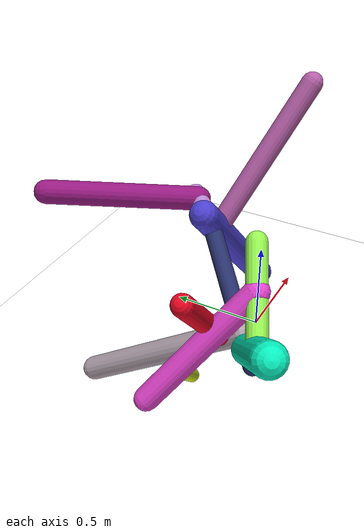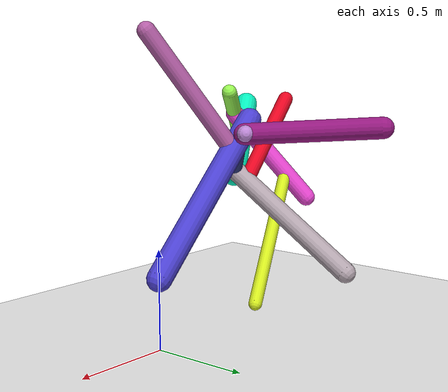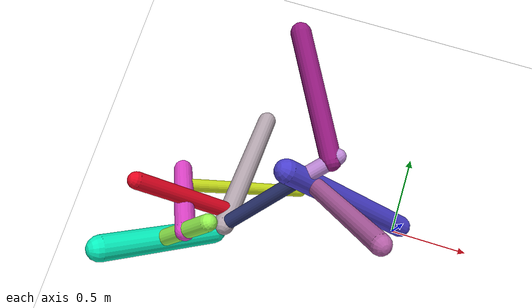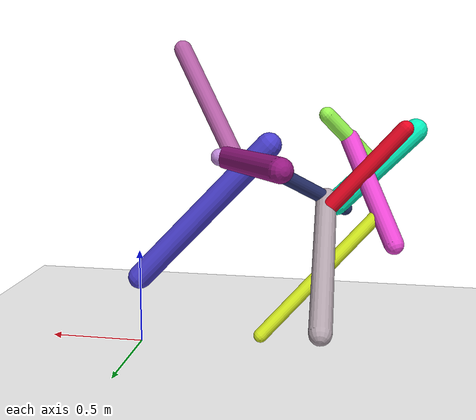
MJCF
<mujoco model="morphology">
  <option timestep="0.01"/>
  <default>
    <default class="/"/>
    <default class="0/"/>
    <default class="0/1/"/>
    <default class="0/2/"/>
    <default class="0/2/3/"/>
    <default class="0/2/4/"/>
    <default class="0/2/4/5/"/>
    <default class="0/2/4/5/6/"/>
    <default class="0/2/4/7/"/>
    <default class="0/2/4/7/8/"/>
    <default class="0/2/4/7/8/9/"/>
    <default class="0/2/4/7/8/9/10/"/>
  </default>
  <asset>
    <texture name="texplane" type="2d" builtin="checker" rgb1="0.10000000000000001 0.20000000000000001 0.29999999999999999" rgb2="0.20000000000000001 0.29999999999999999 0.40000000000000002" width="300" height="300"/>
    <material name="MatPlane" class="/" texture="texplane" texrepeat="20 20" specular="1" shininess="1" reflectance="0.5"/>
  </asset>
  <worldbody>
    <light name="//unnamed_light_0" class="/" directional="true" pos="0 0 1.5" dir="0 0 -1.3" cutoff="100" exponent="1" diffuse="1 1 1" specular="0.10000000000000001 0.10000000000000001 0.10000000000000001"/>
    <geom name="ground" class="/" type="plane" size="15 15 0.5" material="MatPlane" rgba="1 1 1 1"/>
    <site name="body" class="/" size="9.9999999999999995e-07 9.9999999999999995e-07 9.9999999999999995e-07" pos="0 0 0.35855630636215208"/>
    <body pos="0 0 0.35855630636215208" name="0/">
      <freejoint name="0/"/>
      <geom name="0/geom" class="0/" type="capsule" contype="1" conaffinity="1" condim="3" size="0.063913244076612544" rgba="0.29522324029416858 0.25253343686915308 0.81663641948577281 1" friction="0.59999999999999998 0.10000000000000001 0.10000000000000001" fromto="0 0 0 -0.68568822054384548 0.0052271438139737114 0.72065459426873146"/>
      <site name="0/end0" class="0/" size="0.0050000000000000001" pos="-0.68568822054384548 0.0052271438139737114 0.72065459426873146"/>
      <site name="0/attach1" class="0/" size="9.9999999999999995e-07 9.9999999999999995e-07 9.9999999999999995e-07" pos="-0.5482670678012922 0.0041795538059411297 0.57622570938125428"/>
      <body pos="-0.5482670678012922 0.0041795538059411297 0.57622570938125428" name="0/1/">
        <joint name="0/1/joint/" class="0/" type="hinge" axis="0 1 0" limited="true" range="-47.180403420806471 47.180403420806471"/>
        <geom name="0/1/geom" class="0/1/" type="capsule" contype="1" conaffinity="1" condim="3" size="0.047665083366649486" rgba="0.7087398714882458 0.37156393171008684 0.65318897889760019 1" friction="0.59999999999999998 0.10000000000000001 0.10000000000000001" fromto="0 0 0 0.35957418143043784 -0.25416200307180364 0.6072690812421726"/>
        <site name="0/1/end1" class="0/1/" size="0.0050000000000000001" pos="0.35957418143043784 -0.25416200307180364 0.6072690812421726"/>
      </body>
      <site name="0/attach2" class="0/" size="9.9999999999999995e-07 9.9999999999999995e-07 9.9999999999999995e-07" pos="-0.61336261625633048 0.0046757907008291638 0.64464077712641543"/>
      <body pos="-0.61336261625633048 0.0046757907008291638 0.64464077712641543" name="0/2/">
        <joint name="0/2/joint/" class="0/" type="hinge" axis="0 1 0" limited="true" range="-43.240876911010474 43.240876911010474"/>
        <geom name="0/2/geom" class="0/2/" type="capsule" contype="1" conaffinity="1" condim="3" size="0.042886863466865398" rgba="0.74485887967345321 0.53424150253429947 0.84371448818875361 1" friction="0.59999999999999998 0.10000000000000001 0.10000000000000001" fromto="0 0 0 0.14958994947991022 0.15363110740086583 0.031891064180459838"/>
        <site name="0/2/end2" class="0/2/" size="0.0050000000000000001" pos="0.14958994947991022 0.15363110740086583 0.031891064180459838"/>
        <site name="0/2/attach3" class="0/2/" size="9.9999999999999995e-07 9.9999999999999995e-07 9.9999999999999995e-07" pos="0.12158940903106476 0.12487413507795862 0.025921632172184329"/>
        <body pos="0.12158940903106476 0.12487413507795862 0.025921632172184329" name="0/2/3/">
          <joint name="0/2/3/joint/" class="0/2/" type="hinge" axis="-0.72377968556232142 0.67562813990392112 0.14024829174458725" limited="true" range="-57.818888590002345 57.818888590002345"/>
          <geom name="0/2/3/geom" class="0/2/3/" type="capsule" contype="1" conaffinity="1" condim="3" size="0.055258563396274378" rgba="0.58762935077986567 0.09898563392802695 0.50457657587870697 1" friction="0.59999999999999998 0.10000000000000001 0.10000000000000001" fromto="0 0 0 -0.33954697307954729 0.59918221683554607 0.042476914979752145"/>
          <site name="0/2/3/end3" class="0/2/3/" size="0.0050000000000000001" pos="-0.33954697307954729 0.59918221683554607 0.042476914979752145"/>
        </body>
        <site name="0/2/attach4" class="0/2/" size="9.9999999999999995e-07 9.9999999999999995e-07 9.9999999999999995e-07" pos="0.010082725445275921 0.010355109291514666 0.0021495350817832422"/>
        <body pos="0.010082725445275921 0.010355109291514666 0.0021495350817832422" name="0/2/4/">
          <joint name="0/2/4/joint/" class="0/2/" type="hinge" axis="0 -0.20324922268693202 0.97912703643457732" limited="true" range="-32.738676721934795 32.738676721934795"/>
          <geom name="0/2/4/geom" class="0/2/4/" type="capsule" contype="1" conaffinity="1" condim="3" size="0.039393216605224796" rgba="0.15645944703118819 0.19047642009823884 0.42371627965362746 1" friction="0.59999999999999998 0.10000000000000001 0.10000000000000001" fromto="0 0 0 -0.44937564242690131 -0.42324315442650745 -0.31907446610929219"/>
          <site name="0/2/4/end4" class="0/2/4/" size="0.0050000000000000001" pos="-0.44937564242690131 -0.42324315442650745 -0.31907446610929219"/>
          <site name="0/2/4/attach5" class="0/2/4/" size="9.9999999999999995e-07 9.9999999999999995e-07 9.9999999999999995e-07" pos="-0.35160763035934395 -0.33116063387419925 -0.24965531360572241"/>
          <body pos="-0.35160763035934395 -0.33116063387419925 -0.24965531360572241" name="0/2/4/5/">
            <geom name="0/2/4/5/geom" class="0/2/4/5/" type="capsule" contype="1" conaffinity="1" condim="3" size="0.056121072917483708" rgba="0.69813246672175422 0.64094162190653503 0.67692524921266861 1" friction="0.59999999999999998 0.10000000000000001 0.10000000000000001" fromto="0 0 0 -0.033017962921612076 0.74067148563698781 -0.49277469366283255"/>
            <site name="0/2/4/5/end5" class="0/2/4/5/" size="0.0050000000000000001" pos="-0.033017962921612076 0.74067148563698781 -0.49277469366283255"/>
            <site name="0/2/4/5/attach6" class="0/2/4/5/" size="9.9999999999999995e-07 9.9999999999999995e-07 9.9999999999999995e-07" pos="-0.0036764824719903617 0.082472251268567817 -0.0548694517645721"/>
            <body pos="-0.0036764824719903617 0.082472251268567817 -0.0548694517645721" name="0/2/4/5/6/">
              <geom name="0/2/4/5/6/geom" class="0/2/4/5/6/" type="capsule" contype="1" conaffinity="1" condim="3" size="0.043813674774154612" rgba="0.90559629242655737 0.022186000148785578 0.13209848885989361 1" friction="0.59999999999999998 0.10000000000000001 0.10000000000000001" fromto="0 0 0 -0.39593500431181317 -0.020959418840426514 0.44343930193834535"/>
              <site name="0/2/4/5/6/end6" class="0/2/4/5/6/" size="0.0050000000000000001" pos="-0.39593500431181317 -0.020959418840426514 0.44343930193834535"/>
            </body>
          </body>
          <site name="0/2/4/attach7" class="0/2/4/" size="9.9999999999999995e-07 9.9999999999999995e-07 9.9999999999999995e-07" pos="-0.40131707212788265 -0.37797932841953058 -0.28495098185162099"/>
          <body pos="-0.40131707212788265 -0.37797932841953058 -0.28495098185162099" name="0/2/4/7/">
            <geom name="0/2/4/7/geom" class="0/2/4/7/" type="capsule" contype="1" conaffinity="1" condim="3" size="0.06622958934656703" rgba="0.023077478130439477 0.936720624027788 0.74291956372791867 1" friction="0.59999999999999998 0.10000000000000001 0.10000000000000001" fromto="0 0 0 -0.41631056979232367 -0.24522287340456439 0.37871872388325256"/>
            <site name="0/2/4/7/end7" class="0/2/4/7/" size="0.0050000000000000001" pos="-0.41631056979232367 -0.24522287340456439 0.37871872388325256"/>
            <site name="0/2/4/7/attach8" class="0/2/4/7/" size="9.9999999999999995e-07 9.9999999999999995e-07 9.9999999999999995e-07" pos="-0.20898972034230709 -0.12310295114515699 0.19011844986842269"/>
            <body pos="-0.20898972034230709 -0.12310295114515699 0.19011844986842269" name="0/2/4/7/8/">
              <joint name="0/2/4/7/8/joint/" class="0/2/4/7/" type="hinge" axis="0.73493493934549892 -0.36857877608392253 0.56922782850955733" limited="true" range="-51.455258060588172 51.455258060588172"/>
              <geom name="0/2/4/7/8/geom" class="0/2/4/7/8/" type="capsule" contype="1" conaffinity="1" condim="3" size="0.043141088828003563" rgba="0.59628328437526745 0.97256845238327383 0.31956965211732757 1" friction="0.59999999999999998 0.10000000000000001 0.10000000000000001" fromto="0 0 0 0.26572395587075937 0.13606531961208335 0.28990883664615663"/>
              <site name="0/2/4/7/8/end8" class="0/2/4/7/8/" size="0.0050000000000000001" pos="0.26572395587075937 0.13606531961208335 0.28990883664615663"/>
              <site name="0/2/4/7/8/attach9" class="0/2/4/7/8/" size="9.9999999999999995e-07 9.9999999999999995e-07 9.9999999999999995e-07" pos="0.14495752020123406 0.074226244493925064 0.15815083704794394"/>
              <body pos="0.14495752020123406 0.074226244493925064 0.15815083704794394" name="0/2/4/7/8/9/">
                <joint name="0/2/4/7/8/9/joint/" class="0/2/4/7/8/" type="hinge" axis="-0.76958117527305414 0.27130059598981371 0.57804913396779389" limited="true" range="-40.797486563312901 40.797486563312901"/>
                <geom name="0/2/4/7/8/9/geom" class="0/2/4/7/8/9/" type="capsule" contype="1" conaffinity="1" condim="3" size="0.051233741880158223" rgba="0.91349725021408423 0.27424011604539933 0.82327447570875889 1" friction="0.59999999999999998 0.10000000000000001 0.10000000000000001" fromto="0 0 0 -0.24773019964960707 0.34280106837416313 -0.49082042917705093"/>
                <site name="0/2/4/7/8/9/end9" class="0/2/4/7/8/9/" size="0.0050000000000000001" pos="-0.24773019964960707 0.34280106837416313 -0.49082042917705093"/>
                <site name="0/2/4/7/8/9/attach10" class="0/2/4/7/8/9/" size="9.9999999999999995e-07 9.9999999999999995e-07 9.9999999999999995e-07" pos="-0.1747153612755547 0.24176548758024238 -0.34615831548346826"/>
                <body pos="-0.1747153612755547 0.24176548758024238 -0.34615831548346826" name="0/2/4/7/8/9/10/">
                  <geom name="0/2/4/7/8/9/10/geom" class="0/2/4/7/8/9/10/" type="capsule" contype="1" conaffinity="1" condim="3" size="0.036255183450262393" rgba="0.82562729832818249 0.91450405197307139 0.11971014455555717 1" friction="0.59999999999999998 0.10000000000000001 0.10000000000000001" fromto="0 0 0 0.58531270121784695 0.23991969258554047 -0.62250660514189515"/>
                  <site name="0/2/4/7/8/9/10/end10" class="0/2/4/7/8/9/10/" size="0.0050000000000000001" pos="0.58531270121784695 0.23991969258554047 -0.62250660514189515"/>
                </body>
              </body>
            </body>
          </body>
        </body>
      </body>
      <camera name="0/iso" class="0/" mode="trackcom" pos="-2.2999999999999998 -2.2999999999999998 1" xyaxes="0.45000000000000001 -0.45000000000000001 0 0.29999999999999999 0.14999999999999999 0.93999999999999995"/>
    </body>
  </worldbody>
  <actuator>
    <motor name="0/1/motor" class="0/1/" ctrllimited="true" ctrlrange="-1 1" gear="73" joint="0/1/joint/"/>
    <motor name="0/2/motor" class="0/2/" ctrllimited="true" ctrlrange="-1 1" gear="54" joint="0/2/joint/"/>
    <motor name="0/2/3/motor" class="0/2/3/" ctrllimited="true" ctrlrange="-1 1" gear="91" joint="0/2/3/joint/"/>
    <motor name="0/2/4/motor" class="0/2/4/" ctrllimited="true" ctrlrange="-1 1" gear="69" joint="0/2/4/joint/"/>
    <motor name="0/2/4/7/8/motor" class="0/2/4/7/8/" ctrllimited="true" ctrlrange="-1 1" gear="66" joint="0/2/4/7/8/joint/"/>
    <motor name="0/2/4/7/8/9/motor" class="0/2/4/7/8/9/" ctrllimited="true" ctrlrange="-1 1" gear="92" joint="0/2/4/7/8/9/joint/"/>
  </actuator>
  <sensor>
    <subtreelinvel name="velocity" body="0/"/>
  </sensor>
</mujoco>
